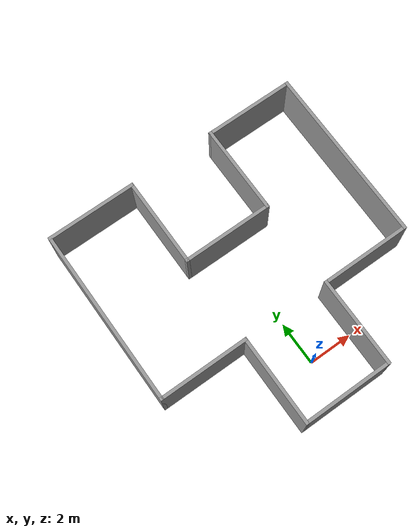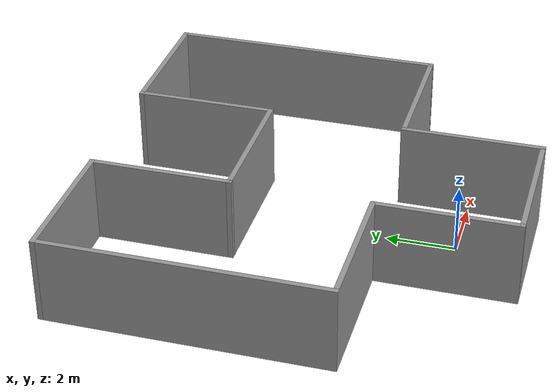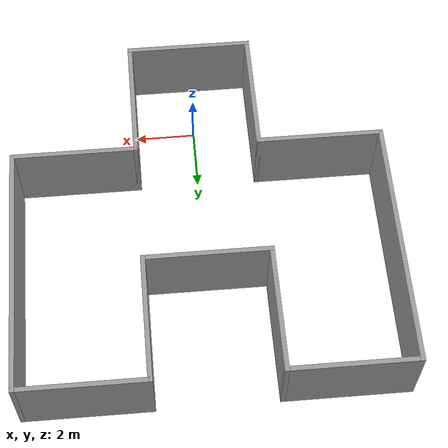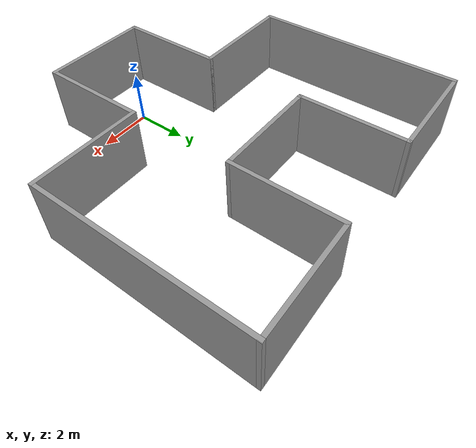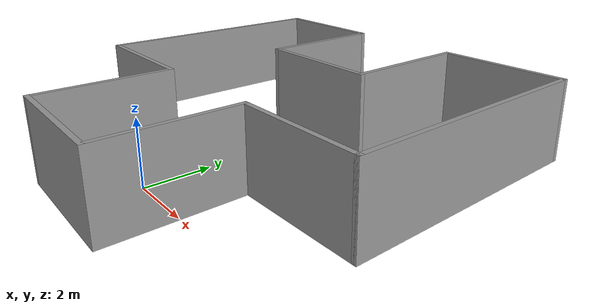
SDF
<?xml version='1.0'?>
<sdf version='1.6'>
  <model name='y_room'>
    <pose frame=''>0 4 0 0 -0 0</pose>
    <link name='Wall_0'>
      <collision name='Wall_0_Collision'>
        <geometry>
          <box>
            <size>4.15 0.15 2.5</size>
          </box>
        </geometry>
        <pose frame=''>0 0 1.25 0 -0 0</pose>
      </collision>
      <visual name='Wall_0_Visual'>
        <pose frame=''>0 0 1.25 0 -0 0</pose>
        <geometry>
          <box>
            <size>4.15 0.15 2.5</size>
          </box>
        </geometry>
        <material>
          <script>
            <uri>file://media/materials/scripts/gazebo.material</uri>
            <name>Gazebo/Grey</name>
          </script>
          <ambient>1 1 1 1</ambient>
        </material>
      </visual>
      <pose frame=''>0 -6 0 0 -0 0</pose>
    </link>
    <link name='Wall_11'>
      <collision name='Wall_11_Collision'>
        <geometry>
          <box>
            <size>4.15 0.15 2.5</size>
          </box>
        </geometry>
        <pose frame=''>0 0 1.25 0 -0 0</pose>
      </collision>
      <visual name='Wall_11_Visual'>
        <pose frame=''>0 0 1.25 0 -0 0</pose>
        <geometry>
          <box>
            <size>4.15 0.15 2.5</size>
          </box>
        </geometry>
        <material>
          <script>
            <uri>file://media/materials/scripts/gazebo.material</uri>
            <name>Gazebo/Grey</name>
          </script>
          <ambient>1 1 1 1</ambient>
        </material>
      </visual>
      <pose frame=''>2 4 0 0 0 -1.5708</pose>
    </link>
    <link name='Wall_13'>
      <collision name='Wall_13_Collision'>
        <geometry>
          <box>
            <size>4.15 0.15 2.5</size>
          </box>
        </geometry>
        <pose frame=''>0 0 1.25 0 -0 0</pose>
      </collision>
      <visual name='Wall_13_Visual'>
        <pose frame=''>0 0 1.25 0 -0 0</pose>
        <geometry>
          <box>
            <size>4.15 0.15 2.5</size>
          </box>
        </geometry>
        <material>
          <script>
            <uri>file://media/materials/scripts/gazebo.material</uri>
            <name>Gazebo/Grey</name>
          </script>
          <ambient>1 1 1 1</ambient>
        </material>
      </visual>
      <pose frame=''>0 2 0 0 -0 3.14159</pose>
    </link>
    <link name='Wall_15'>
      <collision name='Wall_15_Collision'>
        <geometry>
          <box>
            <size>4.15 0.15 2.5</size>
          </box>
        </geometry>
        <pose frame=''>0 0 1.25 0 -0 0</pose>
      </collision>
      <visual name='Wall_15_Visual'>
        <pose frame=''>0 0 1.25 0 -0 0</pose>
        <geometry>
          <box>
            <size>4.15 0.15 2.5</size>
          </box>
        </geometry>
        <material>
          <script>
            <uri>file://media/materials/scripts/gazebo.material</uri>
            <name>Gazebo/Grey</name>
          </script>
          <ambient>1 1 1 1</ambient>
        </material>
      </visual>
      <pose frame=''>-2 4 0 0 -0 1.5708</pose>
    </link>
    <link name='Wall_17'>
      <collision name='Wall_17_Collision'>
        <geometry>
          <box>
            <size>4.15 0.15 2.5</size>
          </box>
        </geometry>
        <pose frame=''>0 0 1.25 0 -0 0</pose>
      </collision>
      <visual name='Wall_17_Visual'>
        <pose frame=''>0 0 1.25 0 -0 0</pose>
        <geometry>
          <box>
            <size>4.15 0.15 2.5</size>
          </box>
        </geometry>
        <material>
          <script>
            <uri>file://media/materials/scripts/gazebo.material</uri>
            <name>Gazebo/Grey</name>
          </script>
          <ambient>1 1 1 1</ambient>
        </material>
      </visual>
      <pose frame=''>-4 6 0 0 -0 3.14159</pose>
    </link>
    <link name='Wall_19'>
      <collision name='Wall_19_Collision'>
        <geometry>
          <box>
            <size>8.15 0.15 2.5</size>
          </box>
        </geometry>
        <pose frame=''>0 0 1.25 0 -0 0</pose>
      </collision>
      <visual name='Wall_19_Visual'>
        <pose frame=''>0 0 1.25 0 -0 0</pose>
        <geometry>
          <box>
            <size>8.15 0.15 2.5</size>
          </box>
        </geometry>
        <material>
          <script>
            <uri>file://media/materials/scripts/gazebo.material</uri>
            <name>Gazebo/Grey</name>
          </script>
          <ambient>1 1 1 1</ambient>
        </material>
      </visual>
      <pose frame=''>-6 2 0 0 0 -1.5708</pose>
    </link>
    <link name='Wall_2'>
      <collision name='Wall_2_Collision'>
        <geometry>
          <box>
            <size>4.15 0.15 2.5</size>
          </box>
        </geometry>
        <pose frame=''>0 0 1.25 0 -0 0</pose>
      </collision>
      <visual name='Wall_2_Visual'>
        <pose frame=''>0 0 1.25 0 -0 0</pose>
        <geometry>
          <box>
            <size>4.15 0.15 2.5</size>
          </box>
        </geometry>
        <material>
          <script>
            <uri>file://media/materials/scripts/gazebo.material</uri>
            <name>Gazebo/Grey</name>
          </script>
          <ambient>1 1 1 1</ambient>
        </material>
      </visual>
      <pose frame=''>2 -4 0 0 -0 1.5708</pose>
    </link>
    <link name='Wall_21'>
      <collision name='Wall_21_Collision'>
        <geometry>
          <box>
            <size>4.15 0.15 2.5</size>
          </box>
        </geometry>
        <pose frame=''>0 0 1.25 0 -0 0</pose>
      </collision>
      <visual name='Wall_21_Visual'>
        <pose frame=''>0 0 1.25 0 -0 0</pose>
        <geometry>
          <box>
            <size>4.15 0.15 2.5</size>
          </box>
        </geometry>
        <material>
          <script>
            <uri>file://media/materials/scripts/gazebo.material</uri>
            <name>Gazebo/Grey</name>
          </script>
          <ambient>1 1 1 1</ambient>
        </material>
      </visual>
      <pose frame=''>-4 -2 0 0 -0 0</pose>
    </link>
    <link name='Wall_24'>
      <collision name='Wall_24_Collision'>
        <geometry>
          <box>
            <size>4.15 0.15 2.5</size>
          </box>
        </geometry>
        <pose frame=''>0 0 1.25 0 -0 0</pose>
      </collision>
      <visual name='Wall_24_Visual'>
        <pose frame=''>0 0 1.25 0 -0 0</pose>
        <geometry>
          <box>
            <size>4.15 0.15 2.5</size>
          </box>
        </geometry>
        <material>
          <script>
            <uri>file://media/materials/scripts/gazebo.material</uri>
            <name>Gazebo/Grey</name>
          </script>
          <ambient>1 1 1 1</ambient>
        </material>
      </visual>
      <pose frame=''>-2 -4 0 0 0 -1.5708</pose>
    </link>
    <link name='Wall_4'>
      <collision name='Wall_4_Collision'>
        <geometry>
          <box>
            <size>4.15 0.15 2.5</size>
          </box>
        </geometry>
        <pose frame=''>0 0 1.25 0 -0 0</pose>
      </collision>
      <visual name='Wall_4_Visual'>
        <pose frame=''>0 0 1.25 0 -0 0</pose>
        <geometry>
          <box>
            <size>4.15 0.15 2.5</size>
          </box>
        </geometry>
        <material>
          <script>
            <uri>file://media/materials/scripts/gazebo.material</uri>
            <name>Gazebo/Grey</name>
          </script>
          <ambient>1 1 1 1</ambient>
        </material>
      </visual>
      <pose frame=''>4 -2 0 0 -0 0</pose>
    </link>
    <link name='Wall_6'>
      <collision name='Wall_6_Collision'>
        <geometry>
          <box>
            <size>8.15 0.15 2.5</size>
          </box>
        </geometry>
        <pose frame=''>0 0 1.25 0 -0 0</pose>
      </collision>
      <visual name='Wall_6_Visual'>
        <pose frame=''>0 0 1.25 0 -0 0</pose>
        <geometry>
          <box>
            <size>8.15 0.15 2.5</size>
          </box>
        </geometry>
        <material>
          <script>
            <uri>file://media/materials/scripts/gazebo.material</uri>
            <name>Gazebo/Grey</name>
          </script>
          <ambient>1 1 1 1</ambient>
        </material>
      </visual>
      <pose frame=''>6 2 0 0 -0 1.5708</pose>
    </link>
    <link name='Wall_9'>
      <collision name='Wall_9_Collision'>
        <geometry>
          <box>
            <size>4.15 0.15 2.5</size>
          </box>
        </geometry>
        <pose frame=''>0 0 1.25 0 -0 0</pose>
      </collision>
      <visual name='Wall_9_Visual'>
        <pose frame=''>0 0 1.25 0 -0 0</pose>
        <geometry>
          <box>
            <size>4.15 0.15 2.5</size>
          </box>
        </geometry>
        <material>
          <script>
            <uri>file://media/materials/scripts/gazebo.material</uri>
            <name>Gazebo/Grey</name>
          </script>
          <ambient>1 1 1 1</ambient>
        </material>
      </visual>
      <pose frame=''>4 6 0 0 -0 3.14159</pose>
    </link>
    <static>1</static>
  </model>
</sdf>
